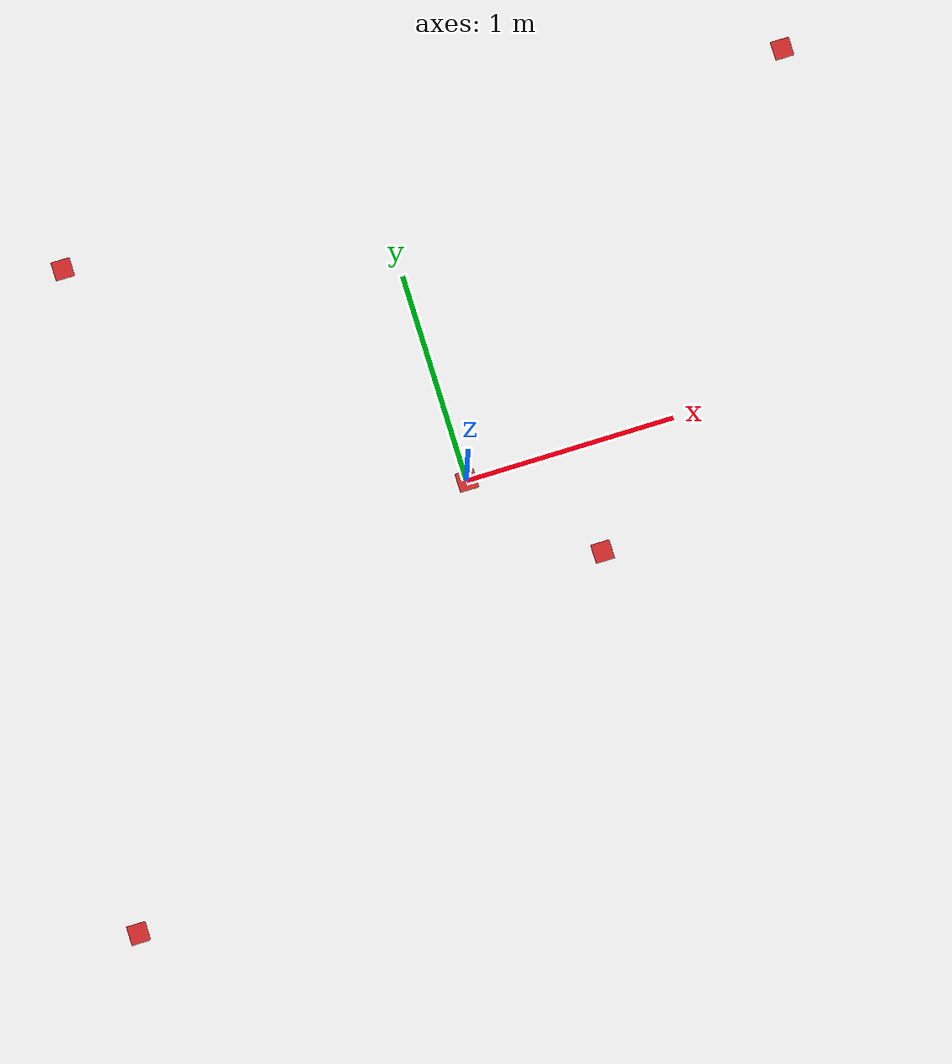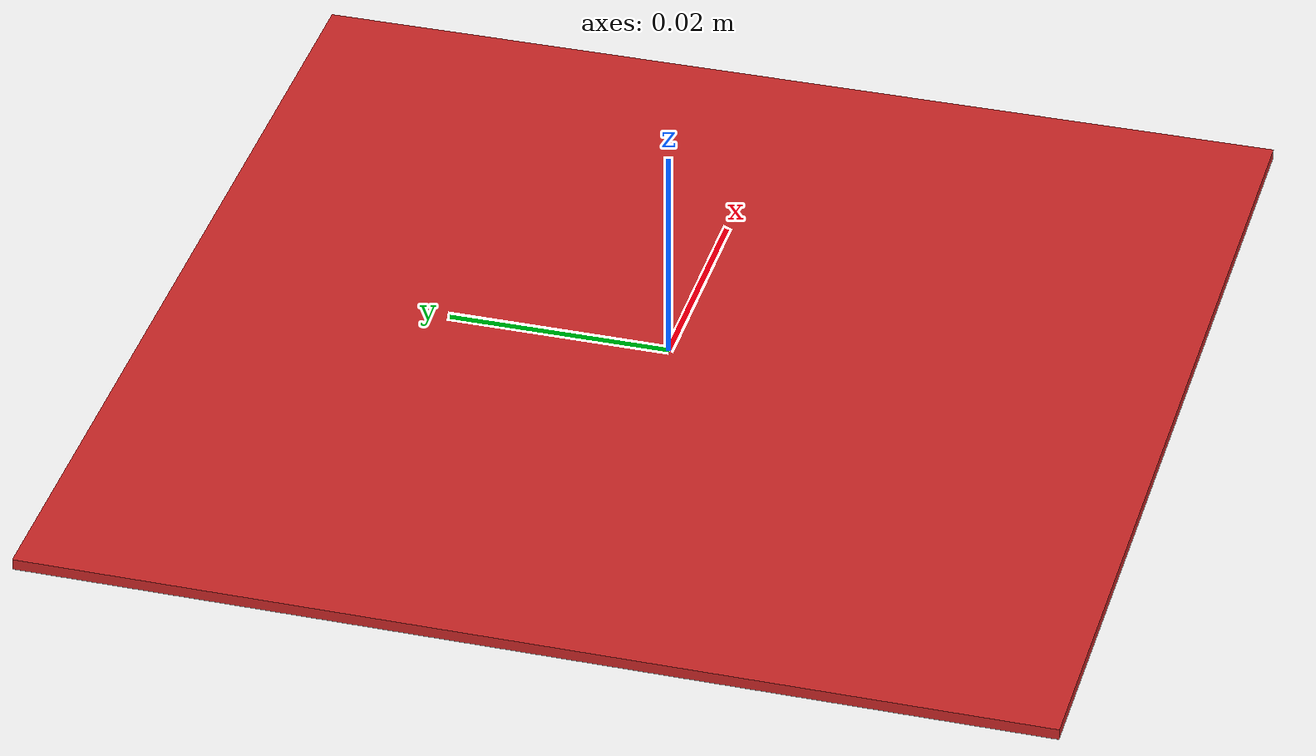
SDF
<sdf version="1.5">
 <world name="maze_6x6_v1">
  <physics type="ode">
   <max_step_size>0.00625</max_step_size>
   <real_time_factor>1</real_time_factor>
   <real_time_update_rate>160</real_time_update_rate>
   <gravity>0 0 -9.8</gravity>
  </physics>
  <scene>
   <shadows>false</shadows>
   <ambient>0.2 0.2 0.2 1</ambient>
   <background>1 1 1 1</background>
   <grid>false</grid>
   <origin_visual>false</origin_visual>
  </scene>
  <include><uri>model://sun</uri></include>
  <light name="camera_spot_1_light" type="spot">
   <pose>-6 4 4 0 -1 -0.8</pose>
   <diffuse>0.5 0.5 0.5 1</diffuse>
   <specular>0.1 0.1 0.1 1</specular>
   <direction>0 0 -1</direction>
   <attenuation>
    <range>20</range>
    <constant>0.2</constant>
    <linear>0.01</linear>
    <quadratic>0.001</quadratic>
   </attenuation>
   <cast_shadows>0</cast_shadows>
   <spot><inner_angle>0.6</inner_angle><outer_angle>1</outer_angle><falloff>1</falloff></spot>
  </light>
  <light name="camera_spot_2_light" type="spot">
   <pose>5 -3 4 0 0.8 -0.6</pose>
   <diffuse>0.5 0.5 0.5 1</diffuse>
   <specular>0.1 0.1 0.1 1</specular>
   <direction>0 0 -1</direction>
   <attenuation>
    <range>20</range>
    <constant>0.3</constant>
    <linear>0.01</linear>
    <quadratic>0.001</quadratic>
   </attenuation>
   <cast_shadows>0</cast_shadows>
   <spot><inner_angle>0.6</inner_angle><outer_angle>1</outer_angle><falloff>1</falloff></spot>
  </light>
  <model name="tag1">
   <pose>0.5 -0.5 0 0 0 0</pose>
   <link name="link">
    <inertial>
     <mass>0.001</mass>
     <inertia><ixx>0.01</ixx><ixy>0.01</ixy><ixz>0.01</ixz><iyy>0.01</iyy><iyz>0.01</iyz><izz>0.01</izz></inertia>
    </inertial>
    <collision name="collision">
     <geometry><box><size>0.09 0.09 0.001</size></box></geometry>
     <surface><friction><ode><mu>0.001</mu><mu2>0.001</mu2></ode></friction></surface>
    </collision>
    <visual name="visual">
     <geometry><box><size>0.09 0.09 0.001</size></box></geometry>
     <material>
      <script><uri>file://media/materials/scripts/gazebo.material</uri><name>Gazebo/Red</name></script>
     </material>
    </visual>
   </link>
  </model>
  <model name="tag2">
   <link name="link">
    <inertial>
     <mass>0.001</mass>
     <inertia><ixx>0.01</ixx><ixy>0.01</ixy><ixz>0.01</ixz><iyy>0.01</iyy><iyz>0.01</iyz><izz>0.01</izz></inertia>
    </inertial>
    <collision name="collision">
     <geometry><box><size>0.09 0.09 0.001</size></box></geometry>
     <surface><friction><ode><mu>0.001</mu><mu2>0.001</mu2></ode></friction></surface>
    </collision>
    <visual name="visual">
     <geometry><box><size>0.09 0.09 0.001</size></box></geometry>
     <material>
      <script><uri>file://media/materials/scripts/gazebo.material</uri><name>Gazebo/Red</name></script>
     </material>
    </visual>
   </link>
  </model>
  <model name="tag3">
   <pose>-1.5 1.5 0 0 0 0</pose>
   <link name="link">
    <inertial>
     <mass>0.001</mass>
     <inertia><ixx>0.01</ixx><ixy>0.01</ixy><ixz>0.01</ixz><iyy>0.01</iyy><iyz>0.01</iyz><izz>0.01</izz></inertia>
    </inertial>
    <collision name="collision">
     <geometry><box><size>0.09 0.09 0.001</size></box></geometry>
     <surface><friction><ode><mu>0.001</mu><mu2>0.001</mu2></ode></friction></surface>
    </collision>
    <visual name="visual">
     <geometry><box><size>0.09 0.09 0.001</size></box></geometry>
     <material>
      <script><uri>file://media/materials/scripts/gazebo.material</uri><name>Gazebo/Red</name></script>
     </material>
    </visual>
   </link>
  </model>
  <model name="tag4">
   <pose>-2.05 -1.55 0 0 0 0</pose>
   <link name="link">
    <inertial>
     <mass>0.001</mass>
     <inertia><ixx>0.01</ixx><ixy>0.01</ixy><ixz>0.01</ixz><iyy>0.01</iyy><iyz>0.01</iyz><izz>0.01</izz></inertia>
    </inertial>
    <collision name="collision">
     <geometry><box><size>0.09 0.09 0.001</size></box></geometry>
     <surface><friction><ode><mu>0.001</mu><mu2>0.001</mu2></ode></friction></surface>
    </collision>
    <visual name="visual">
     <geometry><box><size>0.09 0.09 0.001</size></box></geometry>
     <material>
      <script><uri>file://media/materials/scripts/gazebo.material</uri><name>Gazebo/Red</name></script>
     </material>
    </visual>
   </link>
  </model>
  <model name="tag5">
   <pose>2.01 1.51 0 0 0 0</pose>
   <link name="link">
    <inertial>
     <mass>0.001</mass>
     <inertia><ixx>0.01</ixx><ixy>0.01</ixy><ixz>0.01</ixz><iyy>0.01</iyy><iyz>0.01</iyz><izz>0.01</izz></inertia>
    </inertial>
    <collision name="collision">
     <geometry><box><size>0.09 0.09 0.001</size></box></geometry>
     <surface><friction><ode><mu>0.001</mu><mu2>0.001</mu2></ode></friction></surface>
    </collision>
    <visual name="visual">
     <geometry><box><size>0.09 0.09 0.001</size></box></geometry>
     <material>
      <script><uri>file://media/materials/scripts/gazebo.material</uri><name>Gazebo/Red</name></script>
     </material>
    </visual>
   </link>
  </model>
 </world>
</sdf>
